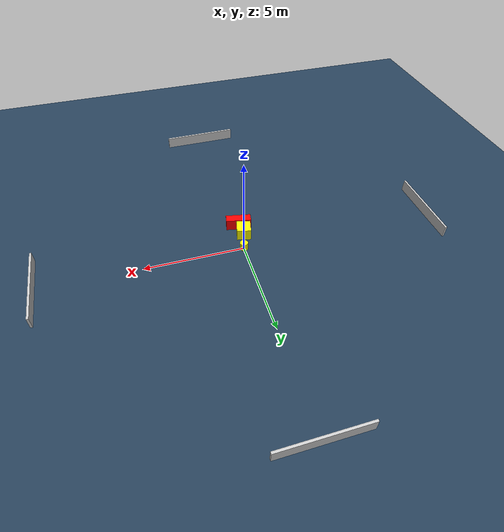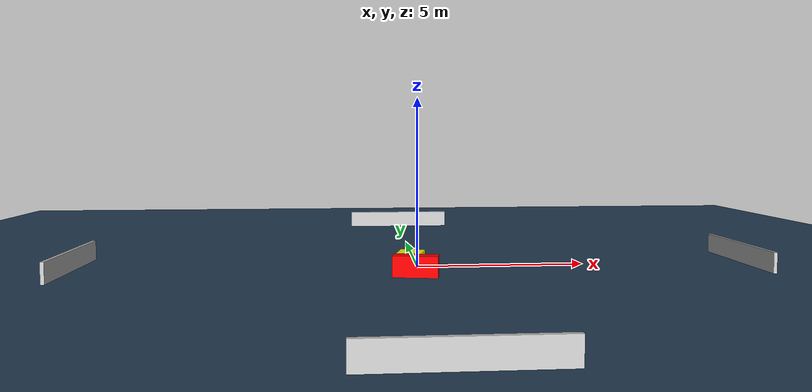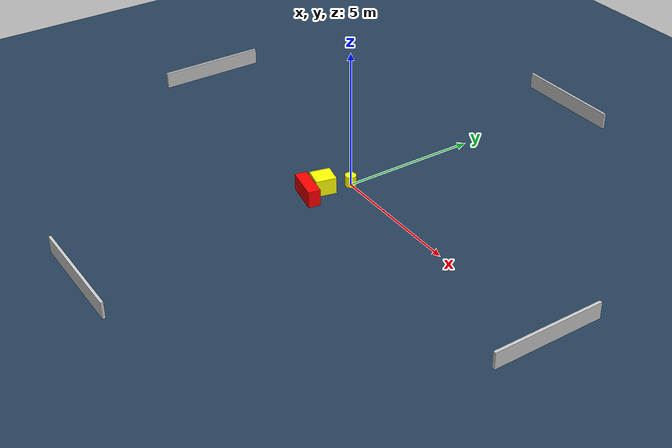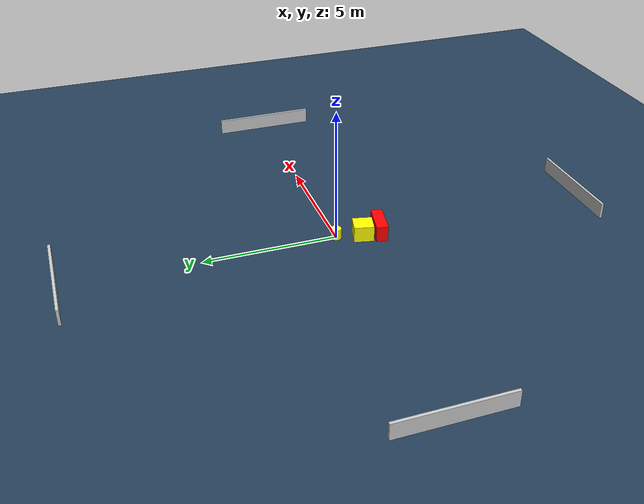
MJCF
<?xml version="1.0" ?>
<mujoco model="generated_environment">
  <option timestep="0.01" integrator="RK4" cone="elliptic"/>
  <default>
    <geom density="1"/>
  </default>
  <asset>
    <texture builtin="gradient" height="3072" name="skybox" rgb1="0.3 0.5 0.7" rgb2="0 0 0" type="skybox" width="512"/>
    <texture builtin="checker" height="300" name="groundplane" rgb1="0.2 0.3 0.4" rgb2="0.1 0.2 0.3" type="2d" width="300"/>
    <material name="groundplane" reflectance="0.2" texrepeat="5 5" texture="groundplane"/>
  </asset>
  <worldbody>
    <light dir="0 0 -1" directional="true" pos="0 0 1.5"/>
    <geom condim="3" friction="0.5 0.005 0.001" material="groundplane" name="floor" pos="0 0 0" size="0 0 0.05" type="plane"/>
    <body name="walls">
      <geom name="wall_1" condim="4" pos="-10.0 0.0 0.3" rgba="0.800000011920929 0.800000011920929 0.800000011920929 1.0" size="0.05 2.0 0.3" type="box"/>
      <geom name="wall_2" condim="4" pos="10.0 0.0 0.3" rgba="0.800000011920929 0.800000011920929 0.800000011920929 1.0" size="0.05 2.0 0.3" type="box"/>
      <geom name="wall_3" condim="4" pos="0.0 -10.0 0.3" rgba="0.800000011920929 0.800000011920929 0.800000011920929 1.0" size="2.0 0.05 0.3" type="box"/>
      <geom name="wall_4" condim="4" pos="0.0 10.0 0.3" rgba="0.800000011920929 0.800000011920929 0.800000011920929 1.0" size="2.0 0.05 0.3" type="box"/>
    </body>
    <body name="robot">
      <joint name="joint_x" type="slide" pos="0 0 0" axis="1 0 0"/>
      <joint name="joint_y" type="slide" pos="0 0 0" axis="0 1 0"/>
      <geom name="robot" type="cylinder" pos="0.0 0.0 0.2" size="0.2 0.2 0.0" mass="5.0" friction="1.0 0.005 0.0001" condim="4" rgba="1.0 1.0 0.0 1.0"/>
    </body>
    <body name="obstacle_1_movable">
      <geom name="obstacle_1_movable" condim="4" pos="-0.2610556773912704 -0.9566806673280959 0.3" euler="0 0 257.1236959797695" friction="0.0 0.005 0.001" rgba="1.0 1.0 0.0 1.0" size="0.3676951090092261 0.3534024544819975 0.3" type="box" mass="0.1"/>
      <joint type="free"/>
    </body>
    <body name="obstacle_2_static">
      <geom name="obstacle_2_static" condim="4" pos="-0.17509981749389233 -1.6296853201587187 0.3" euler="0 0 259.1556505546058" friction="0.0 0.005 0.001" rgba="1.0 0.0 0.0 1.0" size="0.21616204632555136 0.6328908958225736 0.3" type="box"/>
    </body>
  </worldbody>
  <actuator>
    <motor name="actuator_x" joint="joint_x" gear="1" ctrlrange="-1 1"/>
    <motor name="actuator_y" joint="joint_y" gear="1" ctrlrange="-1 1"/>
  </actuator>
</mujoco>
